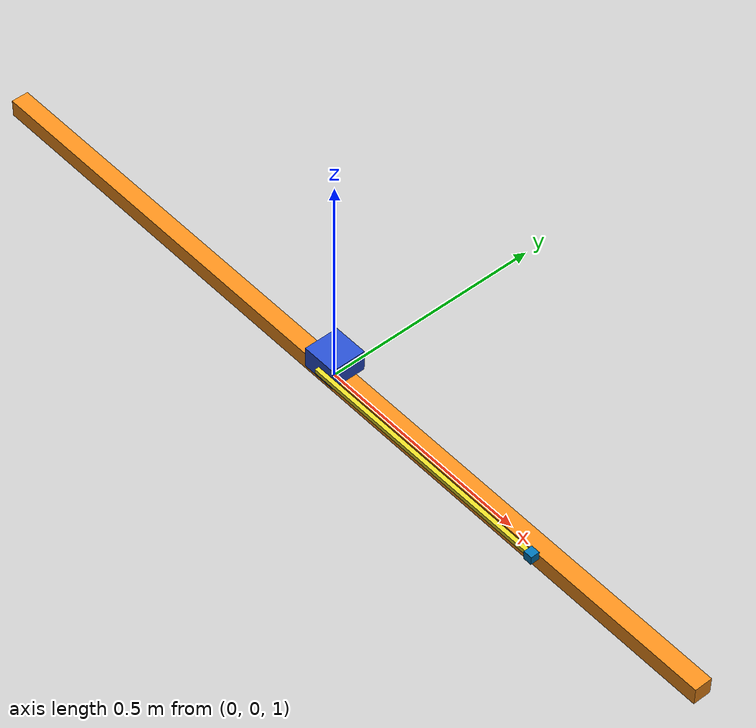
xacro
<?xml version='1.0'?>
<robot name="carpole" xmlns:xacro="http://www.ros.org/wiki/xacro">
  <xacro:include filename="$(find carpole)/urdf/carpole.gazebo" />
  <link name="world"/>

  <link name="base_rail">
    <collision>
      <origin xyz="0 0 0" rpy="0 0 0"/>
      <geometry>
        <box size="2.0 0.04 0.04"/>
      </geometry>
    </collision>

    <visual>
      <origin xyz="0 0 0" rpy="0 0 0"/>
      <geometry>
        <box size="2.0 0.04 0.04"/>
      </geometry>
      <material name="orange"/>
    </visual>

    <inertial>
      <origin xyz="0 0 0" rpy="0 0 0"/>
      <mass value="1"/>
      <inertia
        ixx="1.0" ixy="0.0" ixz="0.0"
        iyy="1.0" iyz="0.0"
        izz="1.0"/>
    </inertial>
  </link>

  <link name="car">
    <collision>
      <origin xyz="0 0 0" rpy="0 0 0"/>
      <geometry>
        <box size="0.08 0.08 0.05"/>
      </geometry>
    </collision>

    <visual>
      <origin xyz="0 0 0" rpy="0 0 0"/>
      <geometry>
        <box size="0.08 0.08 0.05"/>
      </geometry>
    </visual>

    <inertial>
      <origin xyz="0 0 0" rpy="0 0 0"/>
      <mass value="1.0"/>
      <inertia
        ixx="0.1" ixy="0.0" ixz="0.0"
        iyy="0.1" iyz="0.0"
        izz="0.1"/>
    </inertial>
  </link>

  <link name="bar">
    <collision>
      <origin xyz="0.3 -0.005 0" rpy="0 0 0"/>
      <geometry>
        <box size="0.6 0.01 0.01"/>
      </geometry>
    </collision>

    <visual>
      <origin xyz="0.3 -0.005 0" rpy="0 0 0"/>
      <geometry>
        <box size="0.6 0.01 0.01"/>
      </geometry>
    </visual>

    <inertial>
      <origin xyz="0.3 -0.005 0" rpy="0 0 0"/>
      <mass value="0.001"/>
      <inertia
        ixx="0.001" ixy="0.0" ixz="0.0"
        iyy="0.001" iyz="0.0"
        izz="0.001"/>
    </inertial>
  </link>

  <link name="masspoint">
    <collision>
      <origin xyz="0 0 0" rpy="0 0 0"/>
      <geometry>
        <box size="0.02 0.02 0.02"/>
      </geometry>
    </collision>

    <visual>
      <origin xyz="0 0 0" rpy="0 0 0"/>
      <geometry>
        <box size="0.02 0.02 0.02"/>
      </geometry>
    </visual>

    <inertial>
      <origin xyz="0 0 0" rpy="0 0 0"/>
      <mass value="2.0"/>
      <inertia
        ixx="0.1" ixy="0" ixz="0"
        iyy="0.1" iyz="0"
        izz="0.1"/>
    </inertial>
  </link>

  <joint name="fixedjoint" type="fixed">
    <parent link="world"/>
    <child link="base_rail"/>
    <origin xyz="0 0 1" rpy="0 0 0"/>
  </joint>

  <joint name="carsld" type="prismatic">
    <parent link="base_rail"/>
    <child link="car"/>
    <origin xyz="0 0 0.045" rpy="0 0 0"/>
    <axis xyz="1 0 0"/>
    <limit lower="-1.0"
         upper="1.0"
         effort="100000.0"
         velocity="100005.0" />
    <dynamics damping="0.0" friction="0.0"/>
  </joint>

  <joint name="bar_car" type="continuous">
    <parent link="car"/>
    <child link="bar"/>
    <origin xyz="0 -0.04 0" rpy="0 0 0"/>
    <axis xyz="0 1 0"/>
  </joint>

  <joint name="bar_mass" type="fixed">
    <parent link="bar"/>
    <child link="masspoint"/>
    <origin xyz="0.6 -0.005 0" rpy="0 0 0"/>
  </joint>

  <transmission name="linear_rail">
    <type>transmission_interface/SimpleTransmission</type>
    <joint name="carsld">
      <hardwareInterface>hardware_interface/EffortJointInterface</hardwareInterface>
    </joint>
    <actuator name="motor1">
      <hardwareInterface>hardware_interface/EffortJointInterface</hardwareInterface>
      <mechanicalReduction>1</mechanicalReduction>
    </actuator>
  </transmission>

  <transmission name="bar_car">
    <type>transmission_interface/SimpleTransmission</type>
    <joint name="bar_car">
      <hardwareInterface>hardware_interface/EffortJointInterface</hardwareInterface>
    </joint>
    <actuator name="motor2">
      <hardwareInterface>hardware_interface/EffortJointInterface</hardwareInterface>
      <mechanicalReduction>1</mechanicalReduction>
    </actuator>
  </transmission>

</robot>
